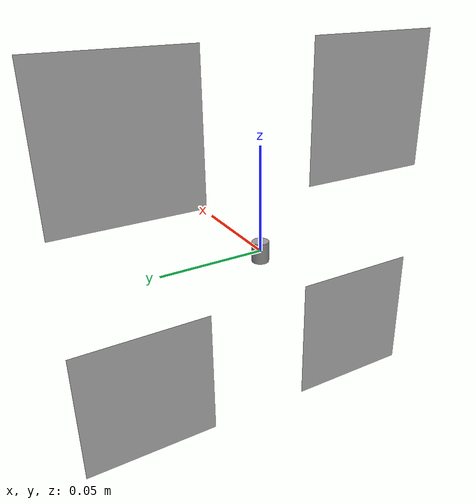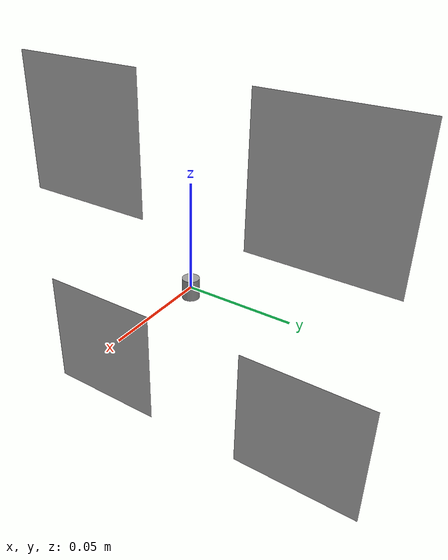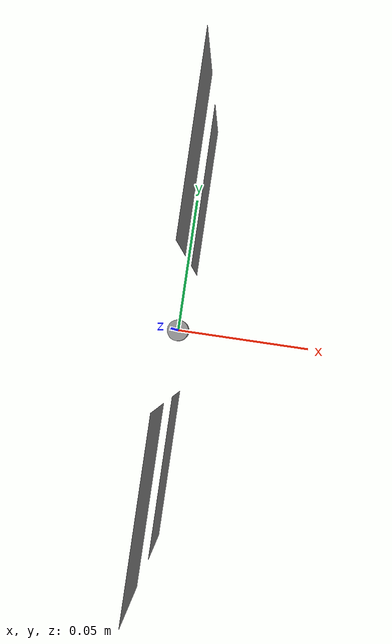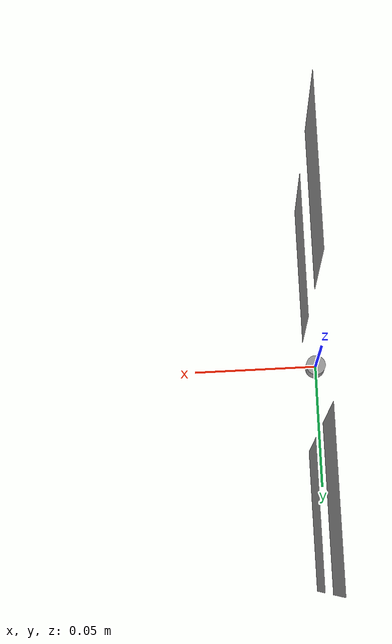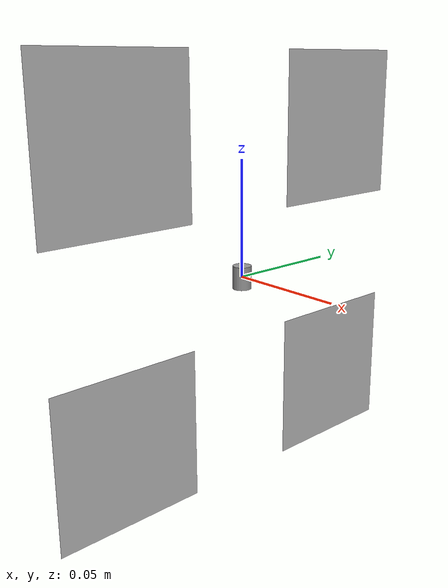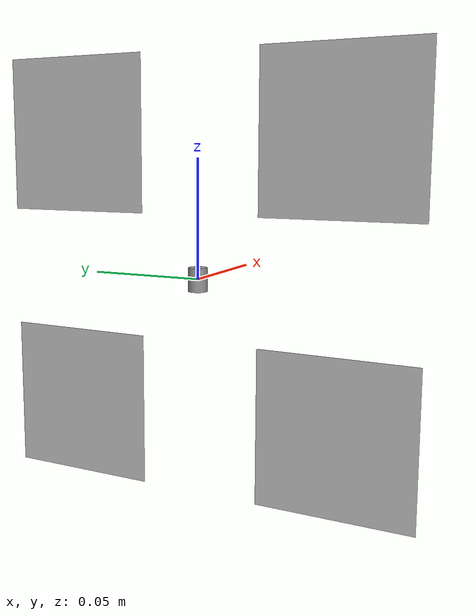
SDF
<?xml version='1.0'?>
<sdf version='1.6'>
  <model name='socket_tag_ring'>
    <static>true</static>
    <link name='socket_frame'>
      <visual name='body'><geometry><cylinder><radius>0.004</radius><length>0.010</length></cylinder></geometry><material><ambient>0.6 0.6 0.6 1</ambient><diffuse>0.6 0.6 0.6 1</diffuse></material></visual>

      <visual name='tag_100'>
          <geometry><mesh><uri>file:///home/zlhq/px4_fly_ws/src/uav_bulb_camera_pose/sim/models/socket_tag_ring/meshes/tag_100.dae</uri></mesh></geometry>
      </visual>

      <visual name='tag_101'>
          <geometry><mesh><uri>file:///home/zlhq/px4_fly_ws/src/uav_bulb_camera_pose/sim/models/socket_tag_ring/meshes/tag_101.dae</uri></mesh></geometry>
      </visual>

      <visual name='tag_102'>
          <geometry><mesh><uri>file:///home/zlhq/px4_fly_ws/src/uav_bulb_camera_pose/sim/models/socket_tag_ring/meshes/tag_102.dae</uri></mesh></geometry>
      </visual>

      <visual name='tag_103'>
          <geometry><mesh><uri>file:///home/zlhq/px4_fly_ws/src/uav_bulb_camera_pose/sim/models/socket_tag_ring/meshes/tag_103.dae</uri></mesh></geometry>
      </visual>
    </link>
  </model>
</sdf>
